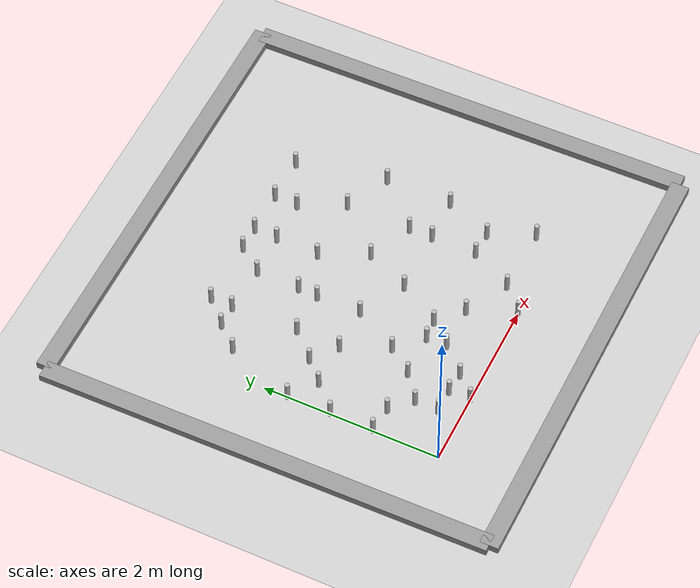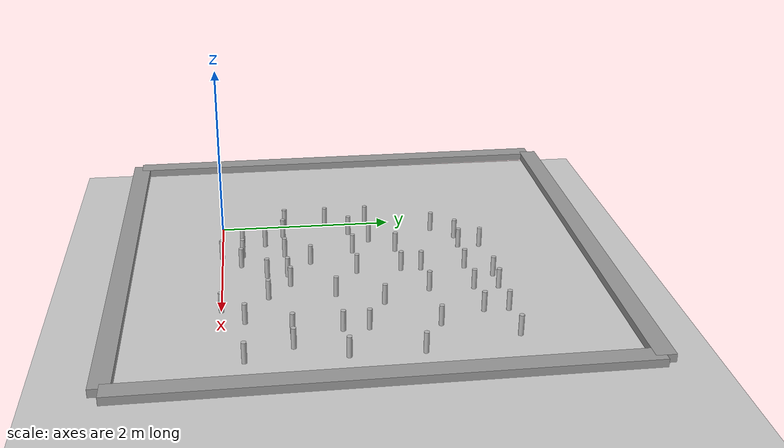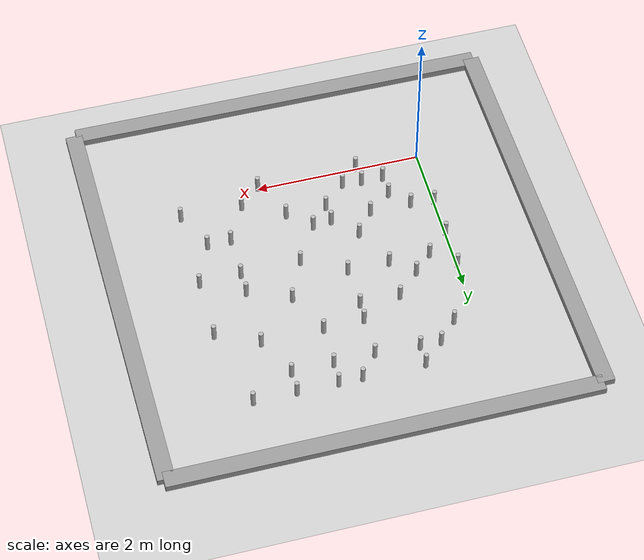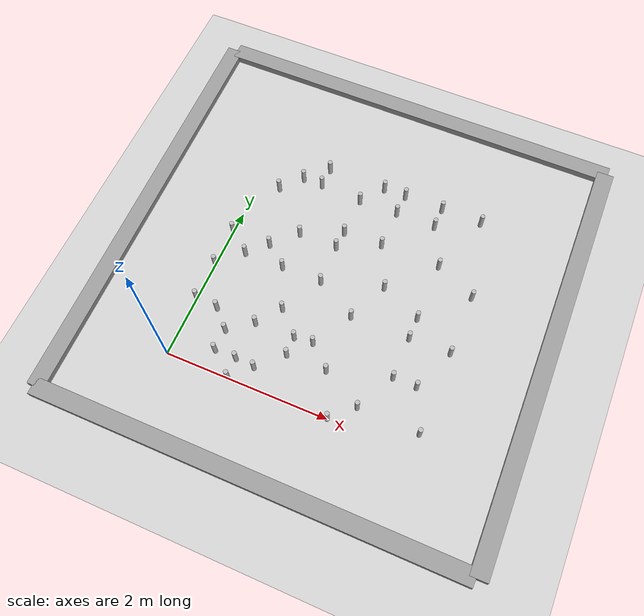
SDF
<sdf version="1.6">
 <world name="default">
  <light name="sun" type="directional">
   <pose>0 0 10 0 -0 0</pose>
   <diffuse>0.8 0.8 0.8 1</diffuse>
   <specular>0.1 0.1 0.1 1</specular>
   <attenuation>
    <range>1000</range>
    <constant>0.9</constant>
    <linear>0.01</linear>
    <quadratic>0.001</quadratic>
   </attenuation>
   <direction>-0.5 0.5 -1</direction>
  </light>
  <model name="ground_plane">
   <static>1</static>
   <link name="link">
    <collision name="collision">
     <geometry><plane><normal>0 0 1</normal><size>100 100</size></plane></geometry>
     <surface><friction><ode><mu>100</mu><mu2>50</mu2></ode></friction></surface>
    </collision>
    <visual name="visual">
     <cast_shadows>0</cast_shadows>
     <geometry><plane><normal>0 0 1</normal><size>100 100</size></plane></geometry>
     <material>
      <script><uri>file://media/materials/scripts/gazebo.material</uri><name>Gazebo/Grey</name></script>
     </material>
    </visual>
   </link>
  </model>
  <gravity>0 0 -9.8</gravity>
  <magnetic_field>6e-06 2.3e-05 -4.2e-05</magnetic_field>
  <atmosphere type="adiabatic"/>
  <physics name="default_physics" default="0" type="ode">
   <max_step_size>0.001</max_step_size>
   <real_time_factor>1</real_time_factor>
   <real_time_update_rate>1000</real_time_update_rate>
  </physics>
  <scene><ambient>0.4 0.4 0.4 1</ambient><background>0.7 0.7 0.7 1</background><shadows>1</shadows></scene>
  <spherical_coordinates>
   <surface_model>EARTH_WGS84</surface_model>
   <latitude_deg>0</latitude_deg>
   <longitude_deg>0</longitude_deg>
   <elevation>0</elevation>
   <heading_deg>0</heading_deg>
  </spherical_coordinates>
  <model name="wall1">
   <static>1</static>
   <link name="link">
    <pose>0 0 0.42 0 -0 0</pose>
    <collision name="collision"><geometry><box><size>5 0.2 0.084</size></box></geometry></collision>
    <visual name="visual">
     <cast_shadows>0</cast_shadows>
     <geometry><box><size>5 0.2 0.084</size></box></geometry>
     <material>
      <script>
       <uri>model://grey_wall/materials/scripts</uri>
       <uri>model://grey_wall/materials/textures</uri>
       <name>vrc/grey_wall</name>
      </script>
     </material>
    </visual>
   </link>
   <pose>-1 1.5 0 0 -0 -1.55905</pose>
  </model>
  <model name="wall2">
   <static>1</static>
   <link name="link">
    <pose>0 0 0.42 0 -0 0</pose>
    <collision name="collision"><geometry><box><size>5 0.2 0.084</size></box></geometry></collision>
    <visual name="visual">
     <cast_shadows>0</cast_shadows>
     <geometry><box><size>5 0.2 0.084</size></box></geometry>
     <material>
      <script>
       <uri>model://grey_wall/materials/scripts</uri>
       <uri>model://grey_wall/materials/textures</uri>
       <name>vrc/grey_wall</name>
      </script>
     </material>
    </visual>
   </link>
   <pose>1.5 4.0 0 0 -0 0</pose>
  </model>
  <model name="wall3">
   <static>1</static>
   <link name="link">
    <pose>0 0 0.42 0 -0 0</pose>
    <collision name="collision"><geometry><box><size>5 0.2 0.084</size></box></geometry></collision>
    <visual name="visual">
     <cast_shadows>0</cast_shadows>
     <geometry><box><size>5 0.2 0.084</size></box></geometry>
     <material>
      <script>
       <uri>model://grey_wall/materials/scripts</uri>
       <uri>model://grey_wall/materials/textures</uri>
       <name>vrc/grey_wall</name>
      </script>
     </material>
    </visual>
   </link>
   <pose>4.0 1.5 0 0 -0 -1.55905</pose>
  </model>
  <model name="wall4">
   <static>1</static>
   <link name="link">
    <pose>0 0 0.42 0 -0 0</pose>
    <collision name="collision"><geometry><box><size>5 0.2 0.084</size></box></geometry></collision>
    <visual name="visual">
     <cast_shadows>0</cast_shadows>
     <geometry><box><size>5 0.2 0.084</size></box></geometry>
     <material>
      <script>
       <uri>model://grey_wall/materials/scripts</uri>
       <uri>model://grey_wall/materials/textures</uri>
       <name>vrc/grey_wall</name>
      </script>
     </material>
    </visual>
   </link>
   <pose>1.5 -1 0 0 -0 0</pose>
  </model>
  <model name="can1.769429507232.73057049277">
   <link name="link">
    <pose>0 0 0.115 0 -0 0</pose>
    <inertial>
     <mass>0.39</mass>
     <inertia><ixx>0.00058</ixx><ixy>0</ixy><ixz>0</ixz><iyy>0.00058</iyy><iyz>0</iyz><izz>0.00019</izz></inertia>
    </inertial>
    <collision name="collision">
     <geometry><cylinder><radius>0.0275</radius><length>0.23</length></cylinder></geometry>
    </collision>
    <visual name="visual">
     <geometry><cylinder><radius>0.0275</radius><length>0.23</length></cylinder></geometry>
     <material>
      <script>
       <uri>model://beer/materials/scripts</uri>
       <uri>model://beer/materials/textures</uri>
       <name>Beer/Diffuse</name>
      </script>
     </material>
    </visual>
   </link>
   <pose>1.76942950723 2.73057049277 -2e-06 1e-06 0 -9.5e-05</pose>
  </model>
  <model name="can0.2756108923151.5">
   <link name="link">
    <pose>0 0 0.115 0 -0 0</pose>
    <inertial>
     <mass>0.39</mass>
     <inertia><ixx>0.00058</ixx><ixy>0</ixy><ixz>0</ixz><iyy>0.00058</iyy><iyz>0</iyz><izz>0.00019</izz></inertia>
    </inertial>
    <collision name="collision">
     <geometry><cylinder><radius>0.0275</radius><length>0.23</length></cylinder></geometry>
    </collision>
    <visual name="visual">
     <geometry><cylinder><radius>0.0275</radius><length>0.23</length></cylinder></geometry>
     <material>
      <script>
       <uri>model://beer/materials/scripts</uri>
       <uri>model://beer/materials/textures</uri>
       <name>Beer/Diffuse</name>
      </script>
     </material>
    </visual>
   </link>
   <pose>0.275610892315 1.5 -2e-06 1e-06 0 -9.5e-05</pose>
  </model>
  <model name="can0.51.71750291754">
   <link name="link">
    <pose>0 0 0.115 0 -0 0</pose>
    <inertial>
     <mass>0.39</mass>
     <inertia><ixx>0.00058</ixx><ixy>0</ixy><ixz>0</ixz><iyy>0.00058</iyy><iyz>0</iyz><izz>0.00019</izz></inertia>
    </inertial>
    <collision name="collision">
     <geometry><cylinder><radius>0.0275</radius><length>0.23</length></cylinder></geometry>
    </collision>
    <visual name="visual">
     <geometry><cylinder><radius>0.0275</radius><length>0.23</length></cylinder></geometry>
     <material>
      <script>
       <uri>model://beer/materials/scripts</uri>
       <uri>model://beer/materials/textures</uri>
       <name>Beer/Diffuse</name>
      </script>
     </material>
    </visual>
   </link>
   <pose>0.5 1.71750291754 -2e-06 1e-06 0 -9.5e-05</pose>
  </model>
  <model name="can2.01.72105293182">
   <link name="link">
    <pose>0 0 0.115 0 -0 0</pose>
    <inertial>
     <mass>0.39</mass>
     <inertia><ixx>0.00058</ixx><ixy>0</ixy><ixz>0</ixz><iyy>0.00058</iyy><iyz>0</iyz><izz>0.00019</izz></inertia>
    </inertial>
    <collision name="collision">
     <geometry><cylinder><radius>0.0275</radius><length>0.23</length></cylinder></geometry>
    </collision>
    <visual name="visual">
     <geometry><cylinder><radius>0.0275</radius><length>0.23</length></cylinder></geometry>
     <material>
      <script>
       <uri>model://beer/materials/scripts</uri>
       <uri>model://beer/materials/textures</uri>
       <name>Beer/Diffuse</name>
      </script>
     </material>
    </visual>
   </link>
   <pose>2.0 1.72105293182 -2e-06 1e-06 0 -9.5e-05</pose>
  </model>
  <model name="can1.273196338311.5">
   <link name="link">
    <pose>0 0 0.115 0 -0 0</pose>
    <inertial>
     <mass>0.39</mass>
     <inertia><ixx>0.00058</ixx><ixy>0</ixy><ixz>0</ixz><iyy>0.00058</iyy><iyz>0</iyz><izz>0.00019</izz></inertia>
    </inertial>
    <collision name="collision">
     <geometry><cylinder><radius>0.0275</radius><length>0.23</length></cylinder></geometry>
    </collision>
    <visual name="visual">
     <geometry><cylinder><radius>0.0275</radius><length>0.23</length></cylinder></geometry>
     <material>
      <script>
       <uri>model://beer/materials/scripts</uri>
       <uri>model://beer/materials/textures</uri>
       <name>Beer/Diffuse</name>
      </script>
     </material>
    </visual>
   </link>
   <pose>1.27319633831 1.5 -2e-06 1e-06 0 -9.5e-05</pose>
  </model>
  <model name="can1.274834134952.22516586505">
   <link name="link">
    <pose>0 0 0.115 0 -0 0</pose>
    <inertial>
     <mass>0.39</mass>
     <inertia><ixx>0.00058</ixx><ixy>0</ixy><ixz>0</ixz><iyy>0.00058</iyy><iyz>0</iyz><izz>0.00019</izz></inertia>
    </inertial>
    <collision name="collision">
     <geometry><cylinder><radius>0.0275</radius><length>0.23</length></cylinder></geometry>
    </collision>
    <visual name="visual">
     <geometry><cylinder><radius>0.0275</radius><length>0.23</length></cylinder></geometry>
     <material>
      <script>
       <uri>model://beer/materials/scripts</uri>
       <uri>model://beer/materials/textures</uri>
       <name>Beer/Diffuse</name>
      </script>
     </material>
    </visual>
   </link>
   <pose>1.27483413495 2.22516586505 -2e-06 1e-06 0 -9.5e-05</pose>
  </model>
  <model name="can0.52.74825235342">
   <link name="link">
    <pose>0 0 0.115 0 -0 0</pose>
    <inertial>
     <mass>0.39</mass>
     <inertia><ixx>0.00058</ixx><ixy>0</ixy><ixz>0</ixz><iyy>0.00058</iyy><iyz>0</iyz><izz>0.00019</izz></inertia>
    </inertial>
    <collision name="collision">
     <geometry><cylinder><radius>0.0275</radius><length>0.23</length></cylinder></geometry>
    </collision>
    <visual name="visual">
     <geometry><cylinder><radius>0.0275</radius><length>0.23</length></cylinder></geometry>
     <material>
      <script>
       <uri>model://beer/materials/scripts</uri>
       <uri>model://beer/materials/textures</uri>
       <name>Beer/Diffuse</name>
      </script>
     </material>
    </visual>
   </link>
   <pose>0.5 2.74825235342 -2e-06 1e-06 0 -9.5e-05</pose>
  </model>
  <model name="can1.781881791543.0">
   <link name="link">
    <pose>0 0 0.115 0 -0 0</pose>
    <inertial>
     <mass>0.39</mass>
     <inertia><ixx>0.00058</ixx><ixy>0</ixy><ixz>0</ixz><iyy>0.00058</iyy><iyz>0</iyz><izz>0.00019</izz></inertia>
    </inertial>
    <collision name="collision">
     <geometry><cylinder><radius>0.0275</radius><length>0.23</length></cylinder></geometry>
    </collision>
    <visual name="visual">
     <geometry><cylinder><radius>0.0275</radius><length>0.23</length></cylinder></geometry>
     <material>
      <script>
       <uri>model://beer/materials/scripts</uri>
       <uri>model://beer/materials/textures</uri>
       <name>Beer/Diffuse</name>
      </script>
     </material>
    </visual>
   </link>
   <pose>1.78188179154 3.0 -2e-06 1e-06 0 -9.5e-05</pose>
  </model>
  <model name="can2.265829215212.73417078479">
   <link name="link">
    <pose>0 0 0.115 0 -0 0</pose>
    <inertial>
     <mass>0.39</mass>
     <inertia><ixx>0.00058</ixx><ixy>0</ixy><ixz>0</ixz><iyy>0.00058</iyy><iyz>0</iyz><izz>0.00019</izz></inertia>
    </inertial>
    <collision name="collision">
     <geometry><cylinder><radius>0.0275</radius><length>0.23</length></cylinder></geometry>
    </collision>
    <visual name="visual">
     <geometry><cylinder><radius>0.0275</radius><length>0.23</length></cylinder></geometry>
     <material>
      <script>
       <uri>model://beer/materials/scripts</uri>
       <uri>model://beer/materials/textures</uri>
       <name>Beer/Diffuse</name>
      </script>
     </material>
    </visual>
   </link>
   <pose>2.26582921521 2.73417078479 -2e-06 1e-06 0 -9.5e-05</pose>
  </model>
  <model name="can0.7556218427023.0">
   <link name="link">
    <pose>0 0 0.115 0 -0 0</pose>
    <inertial>
     <mass>0.39</mass>
     <inertia><ixx>0.00058</ixx><ixy>0</ixy><ixz>0</ixz><iyy>0.00058</iyy><iyz>0</iyz><izz>0.00019</izz></inertia>
    </inertial>
    <collision name="collision">
     <geometry><cylinder><radius>0.0275</radius><length>0.23</length></cylinder></geometry>
    </collision>
    <visual name="visual">
     <geometry><cylinder><radius>0.0275</radius><length>0.23</length></cylinder></geometry>
     <material>
      <script>
       <uri>model://beer/materials/scripts</uri>
       <uri>model://beer/materials/textures</uri>
       <name>Beer/Diffuse</name>
      </script>
     </material>
    </visual>
   </link>
   <pose>0.755621842702 3.0 -2e-06 1e-06 0 -9.5e-05</pose>
  </model>
  <model name="can2.51.23127896449">
   <link name="link">
    <pose>0 0 0.115 0 -0 0</pose>
    <inertial>
     <mass>0.39</mass>
     <inertia><ixx>0.00058</ixx><ixy>0</ixy><ixz>0</ixz><iyy>0.00058</iyy><iyz>0</iyz><izz>0.00019</izz></inertia>
    </inertial>
    <collision name="collision">
     <geometry><cylinder><radius>0.0275</radius><length>0.23</length></cylinder></geometry>
    </collision>
    <visual name="visual">
     <geometry><cylinder><radius>0.0275</radius><length>0.23</length></cylinder></geometry>
     <material>
      <script>
       <uri>model://beer/materials/scripts</uri>
       <uri>model://beer/materials/textures</uri>
       <name>Beer/Diffuse</name>
      </script>
     </material>
    </visual>
   </link>
   <pose>2.5 1.23127896449 -2e-06 1e-06 0 -9.5e-05</pose>
  </model>
  <model name="can0.01.72632299853">
   <link name="link">
    <pose>0 0 0.115 0 -0 0</pose>
    <inertial>
     <mass>0.39</mass>
     <inertia><ixx>0.00058</ixx><ixy>0</ixy><ixz>0</ixz><iyy>0.00058</iyy><iyz>0</iyz><izz>0.00019</izz></inertia>
    </inertial>
    <collision name="collision">
     <geometry><cylinder><radius>0.0275</radius><length>0.23</length></cylinder></geometry>
    </collision>
    <visual name="visual">
     <geometry><cylinder><radius>0.0275</radius><length>0.23</length></cylinder></geometry>
     <material>
      <script>
       <uri>model://beer/materials/scripts</uri>
       <uri>model://beer/materials/textures</uri>
       <name>Beer/Diffuse</name>
      </script>
     </material>
    </visual>
   </link>
   <pose>0.0 1.72632299853 -2e-06 1e-06 0 -9.5e-05</pose>
  </model>
  <model name="can1.777383396231.22261660377">
   <link name="link">
    <pose>0 0 0.115 0 -0 0</pose>
    <inertial>
     <mass>0.39</mass>
     <inertia><ixx>0.00058</ixx><ixy>0</ixy><ixz>0</ixz><iyy>0.00058</iyy><iyz>0</iyz><izz>0.00019</izz></inertia>
    </inertial>
    <collision name="collision">
     <geometry><cylinder><radius>0.0275</radius><length>0.23</length></cylinder></geometry>
    </collision>
    <visual name="visual">
     <geometry><cylinder><radius>0.0275</radius><length>0.23</length></cylinder></geometry>
     <material>
      <script>
       <uri>model://beer/materials/scripts</uri>
       <uri>model://beer/materials/textures</uri>
       <name>Beer/Diffuse</name>
      </script>
     </material>
    </visual>
   </link>
   <pose>1.77738339623 1.22261660377 -2e-06 1e-06 0 -9.5e-05</pose>
  </model>
  <model name="can0.7785080617092.0">
   <link name="link">
    <pose>0 0 0.115 0 -0 0</pose>
    <inertial>
     <mass>0.39</mass>
     <inertia><ixx>0.00058</ixx><ixy>0</ixy><ixz>0</ixz><iyy>0.00058</iyy><iyz>0</iyz><izz>0.00019</izz></inertia>
    </inertial>
    <collision name="collision">
     <geometry><cylinder><radius>0.0275</radius><length>0.23</length></cylinder></geometry>
    </collision>
    <visual name="visual">
     <geometry><cylinder><radius>0.0275</radius><length>0.23</length></cylinder></geometry>
     <material>
      <script>
       <uri>model://beer/materials/scripts</uri>
       <uri>model://beer/materials/textures</uri>
       <name>Beer/Diffuse</name>
      </script>
     </material>
    </visual>
   </link>
   <pose>0.778508061709 2.0 -2e-06 1e-06 0 -9.5e-05</pose>
  </model>
  <model name="can1.272984553580.727015446415">
   <link name="link">
    <pose>0 0 0.115 0 -0 0</pose>
    <inertial>
     <mass>0.39</mass>
     <inertia><ixx>0.00058</ixx><ixy>0</ixy><ixz>0</ixz><iyy>0.00058</iyy><iyz>0</iyz><izz>0.00019</izz></inertia>
    </inertial>
    <collision name="collision">
     <geometry><cylinder><radius>0.0275</radius><length>0.23</length></cylinder></geometry>
    </collision>
    <visual name="visual">
     <geometry><cylinder><radius>0.0275</radius><length>0.23</length></cylinder></geometry>
     <material>
      <script>
       <uri>model://beer/materials/scripts</uri>
       <uri>model://beer/materials/textures</uri>
       <name>Beer/Diffuse</name>
      </script>
     </material>
    </visual>
   </link>
   <pose>1.27298455358 0.727015446415 -2e-06 1e-06 0 -9.5e-05</pose>
  </model>
  <model name="can2.50.718366912159">
   <link name="link">
    <pose>0 0 0.115 0 -0 0</pose>
    <inertial>
     <mass>0.39</mass>
     <inertia><ixx>0.00058</ixx><ixy>0</ixy><ixz>0</ixz><iyy>0.00058</iyy><iyz>0</iyz><izz>0.00019</izz></inertia>
    </inertial>
    <collision name="collision">
     <geometry><cylinder><radius>0.0275</radius><length>0.23</length></cylinder></geometry>
    </collision>
    <visual name="visual">
     <geometry><cylinder><radius>0.0275</radius><length>0.23</length></cylinder></geometry>
     <material>
      <script>
       <uri>model://beer/materials/scripts</uri>
       <uri>model://beer/materials/textures</uri>
       <name>Beer/Diffuse</name>
      </script>
     </material>
    </visual>
   </link>
   <pose>2.5 0.718366912159 -2e-06 1e-06 0 -9.5e-05</pose>
  </model>
  <model name="can1.771145324470.5">
   <link name="link">
    <pose>0 0 0.115 0 -0 0</pose>
    <inertial>
     <mass>0.39</mass>
     <inertia><ixx>0.00058</ixx><ixy>0</ixy><ixz>0</ixz><iyy>0.00058</iyy><iyz>0</iyz><izz>0.00019</izz></inertia>
    </inertial>
    <collision name="collision">
     <geometry><cylinder><radius>0.0275</radius><length>0.23</length></cylinder></geometry>
    </collision>
    <visual name="visual">
     <geometry><cylinder><radius>0.0275</radius><length>0.23</length></cylinder></geometry>
     <material>
      <script>
       <uri>model://beer/materials/scripts</uri>
       <uri>model://beer/materials/textures</uri>
       <name>Beer/Diffuse</name>
      </script>
     </material>
    </visual>
   </link>
   <pose>1.77114532447 0.5 -2e-06 1e-06 0 -9.5e-05</pose>
  </model>
  <model name="can0.7752302076860.0">
   <link name="link">
    <pose>0 0 0.115 0 -0 0</pose>
    <inertial>
     <mass>0.39</mass>
     <inertia><ixx>0.00058</ixx><ixy>0</ixy><ixz>0</ixz><iyy>0.00058</iyy><iyz>0</iyz><izz>0.00019</izz></inertia>
    </inertial>
    <collision name="collision">
     <geometry><cylinder><radius>0.0275</radius><length>0.23</length></cylinder></geometry>
    </collision>
    <visual name="visual">
     <geometry><cylinder><radius>0.0275</radius><length>0.23</length></cylinder></geometry>
     <material>
      <script>
       <uri>model://beer/materials/scripts</uri>
       <uri>model://beer/materials/textures</uri>
       <name>Beer/Diffuse</name>
      </script>
     </material>
    </visual>
   </link>
   <pose>0.775230207686 0.0 -2e-06 1e-06 0 -9.5e-05</pose>
  </model>
  <model name="can0.00.746624953268">
   <link name="link">
    <pose>0 0 0.115 0 -0 0</pose>
    <inertial>
     <mass>0.39</mass>
     <inertia><ixx>0.00058</ixx><ixy>0</ixy><ixz>0</ixz><iyy>0.00058</iyy><iyz>0</iyz><izz>0.00019</izz></inertia>
    </inertial>
    <collision name="collision">
     <geometry><cylinder><radius>0.0275</radius><length>0.23</length></cylinder></geometry>
    </collision>
    <visual name="visual">
     <geometry><cylinder><radius>0.0275</radius><length>0.23</length></cylinder></geometry>
     <material>
      <script>
       <uri>model://beer/materials/scripts</uri>
       <uri>model://beer/materials/textures</uri>
       <name>Beer/Diffuse</name>
      </script>
     </material>
    </visual>
   </link>
   <pose>0.0 0.746624953268 -2e-06 1e-06 0 -9.5e-05</pose>
  </model>
  <model name="can1.00.218293859125">
   <link name="link">
    <pose>0 0 0.115 0 -0 0</pose>
    <inertial>
     <mass>0.39</mass>
     <inertia><ixx>0.00058</ixx><ixy>0</ixy><ixz>0</ixz><iyy>0.00058</iyy><iyz>0</iyz><izz>0.00019</izz></inertia>
    </inertial>
    <collision name="collision">
     <geometry><cylinder><radius>0.0275</radius><length>0.23</length></cylinder></geometry>
    </collision>
    <visual name="visual">
     <geometry><cylinder><radius>0.0275</radius><length>0.23</length></cylinder></geometry>
     <material>
      <script>
       <uri>model://beer/materials/scripts</uri>
       <uri>model://beer/materials/textures</uri>
       <name>Beer/Diffuse</name>
      </script>
     </material>
    </visual>
   </link>
   <pose>1.0 0.218293859125 -2e-06 1e-06 0 -9.5e-05</pose>
  </model>
  <model name="can2.257008541740.242991458258">
   <link name="link">
    <pose>0 0 0.115 0 -0 0</pose>
    <inertial>
     <mass>0.39</mass>
     <inertia><ixx>0.00058</ixx><ixy>0</ixy><ixz>0</ixz><iyy>0.00058</iyy><iyz>0</iyz><izz>0.00019</izz></inertia>
    </inertial>
    <collision name="collision">
     <geometry><cylinder><radius>0.0275</radius><length>0.23</length></cylinder></geometry>
    </collision>
    <visual name="visual">
     <geometry><cylinder><radius>0.0275</radius><length>0.23</length></cylinder></geometry>
     <material>
      <script>
       <uri>model://beer/materials/scripts</uri>
       <uri>model://beer/materials/textures</uri>
       <name>Beer/Diffuse</name>
      </script>
     </material>
    </visual>
   </link>
   <pose>2.25700854174 0.242991458258 -2e-06 1e-06 0 -9.5e-05</pose>
  </model>
  <model name="can1.760226116172.23977388383">
   <link name="link">
    <pose>0 0 0.115 0 -0 0</pose>
    <inertial>
     <mass>0.39</mass>
     <inertia><ixx>0.00058</ixx><ixy>0</ixy><ixz>0</ixz><iyy>0.00058</iyy><iyz>0</iyz><izz>0.00019</izz></inertia>
    </inertial>
    <collision name="collision">
     <geometry><cylinder><radius>0.0275</radius><length>0.23</length></cylinder></geometry>
    </collision>
    <visual name="visual">
     <geometry><cylinder><radius>0.0275</radius><length>0.23</length></cylinder></geometry>
     <material>
      <script>
       <uri>model://beer/materials/scripts</uri>
       <uri>model://beer/materials/textures</uri>
       <name>Beer/Diffuse</name>
      </script>
     </material>
    </visual>
   </link>
   <pose>1.76022611617 2.23977388383 -2e-06 1e-06 0 -9.5e-05</pose>
  </model>
  <model name="can3.01.24506078331">
   <link name="link">
    <pose>0 0 0.115 0 -0 0</pose>
    <inertial>
     <mass>0.39</mass>
     <inertia><ixx>0.00058</ixx><ixy>0</ixy><ixz>0</ixz><iyy>0.00058</iyy><iyz>0</iyz><izz>0.00019</izz></inertia>
    </inertial>
    <collision name="collision">
     <geometry><cylinder><radius>0.0275</radius><length>0.23</length></cylinder></geometry>
    </collision>
    <visual name="visual">
     <geometry><cylinder><radius>0.0275</radius><length>0.23</length></cylinder></geometry>
     <material>
      <script>
       <uri>model://beer/materials/scripts</uri>
       <uri>model://beer/materials/textures</uri>
       <name>Beer/Diffuse</name>
      </script>
     </material>
    </visual>
   </link>
   <pose>3.0 1.24506078331 -2e-06 1e-06 0 -9.5e-05</pose>
  </model>
  <model name="can0.2725209513052.5">
   <link name="link">
    <pose>0 0 0.115 0 -0 0</pose>
    <inertial>
     <mass>0.39</mass>
     <inertia><ixx>0.00058</ixx><ixy>0</ixy><ixz>0</ixz><iyy>0.00058</iyy><iyz>0</iyz><izz>0.00019</izz></inertia>
    </inertial>
    <collision name="collision">
     <geometry><cylinder><radius>0.0275</radius><length>0.23</length></cylinder></geometry>
    </collision>
    <visual name="visual">
     <geometry><cylinder><radius>0.0275</radius><length>0.23</length></cylinder></geometry>
     <material>
      <script>
       <uri>model://beer/materials/scripts</uri>
       <uri>model://beer/materials/textures</uri>
       <name>Beer/Diffuse</name>
      </script>
     </material>
    </visual>
   </link>
   <pose>0.272520951305 2.5 -2e-06 1e-06 0 -9.5e-05</pose>
  </model>
  <model name="can3.00.228099375766">
   <link name="link">
    <pose>0 0 0.115 0 -0 0</pose>
    <inertial>
     <mass>0.39</mass>
     <inertia><ixx>0.00058</ixx><ixy>0</ixy><ixz>0</ixz><iyy>0.00058</iyy><iyz>0</iyz><izz>0.00019</izz></inertia>
    </inertial>
    <collision name="collision">
     <geometry><cylinder><radius>0.0275</radius><length>0.23</length></cylinder></geometry>
    </collision>
    <visual name="visual">
     <geometry><cylinder><radius>0.0275</radius><length>0.23</length></cylinder></geometry>
     <material>
      <script>
       <uri>model://beer/materials/scripts</uri>
       <uri>model://beer/materials/textures</uri>
       <name>Beer/Diffuse</name>
      </script>
     </material>
    </visual>
   </link>
   <pose>3.0 0.228099375766 -2e-06 1e-06 0 -9.5e-05</pose>
  </model>
  <model name="can0.7705411234611.5">
   <link name="link">
    <pose>0 0 0.115 0 -0 0</pose>
    <inertial>
     <mass>0.39</mass>
     <inertia><ixx>0.00058</ixx><ixy>0</ixy><ixz>0</ixz><iyy>0.00058</iyy><iyz>0</iyz><izz>0.00019</izz></inertia>
    </inertial>
    <collision name="collision">
     <geometry><cylinder><radius>0.0275</radius><length>0.23</length></cylinder></geometry>
    </collision>
    <visual name="visual">
     <geometry><cylinder><radius>0.0275</radius><length>0.23</length></cylinder></geometry>
     <material>
      <script>
       <uri>model://beer/materials/scripts</uri>
       <uri>model://beer/materials/textures</uri>
       <name>Beer/Diffuse</name>
      </script>
     </material>
    </visual>
   </link>
   <pose>0.770541123461 1.5 -2e-06 1e-06 0 -9.5e-05</pose>
  </model>
  <model name="can2.52.240097773">
   <link name="link">
    <pose>0 0 0.115 0 -0 0</pose>
    <inertial>
     <mass>0.39</mass>
     <inertia><ixx>0.00058</ixx><ixy>0</ixy><ixz>0</ixz><iyy>0.00058</iyy><iyz>0</iyz><izz>0.00019</izz></inertia>
    </inertial>
    <collision name="collision">
     <geometry><cylinder><radius>0.0275</radius><length>0.23</length></cylinder></geometry>
    </collision>
    <visual name="visual">
     <geometry><cylinder><radius>0.0275</radius><length>0.23</length></cylinder></geometry>
     <material>
      <script>
       <uri>model://beer/materials/scripts</uri>
       <uri>model://beer/materials/textures</uri>
       <name>Beer/Diffuse</name>
      </script>
     </material>
    </visual>
   </link>
   <pose>2.5 2.240097773 -2e-06 1e-06 0 -9.5e-05</pose>
  </model>
  <model name="can1.260999145992.0">
   <link name="link">
    <pose>0 0 0.115 0 -0 0</pose>
    <inertial>
     <mass>0.39</mass>
     <inertia><ixx>0.00058</ixx><ixy>0</ixy><ixz>0</ixz><iyy>0.00058</iyy><iyz>0</iyz><izz>0.00019</izz></inertia>
    </inertial>
    <collision name="collision">
     <geometry><cylinder><radius>0.0275</radius><length>0.23</length></cylinder></geometry>
    </collision>
    <visual name="visual">
     <geometry><cylinder><radius>0.0275</radius><length>0.23</length></cylinder></geometry>
     <material>
      <script>
       <uri>model://beer/materials/scripts</uri>
       <uri>model://beer/materials/textures</uri>
       <name>Beer/Diffuse</name>
      </script>
     </material>
    </visual>
   </link>
   <pose>1.26099914599 2.0 -2e-06 1e-06 0 -9.5e-05</pose>
  </model>
  <model name="can0.2835146841470.716485315853">
   <link name="link">
    <pose>0 0 0.115 0 -0 0</pose>
    <inertial>
     <mass>0.39</mass>
     <inertia><ixx>0.00058</ixx><ixy>0</ixy><ixz>0</ixz><iyy>0.00058</iyy><iyz>0</iyz><izz>0.00019</izz></inertia>
    </inertial>
    <collision name="collision">
     <geometry><cylinder><radius>0.0275</radius><length>0.23</length></cylinder></geometry>
    </collision>
    <visual name="visual">
     <geometry><cylinder><radius>0.0275</radius><length>0.23</length></cylinder></geometry>
     <material>
      <script>
       <uri>model://beer/materials/scripts</uri>
       <uri>model://beer/materials/textures</uri>
       <name>Beer/Diffuse</name>
      </script>
     </material>
    </visual>
   </link>
   <pose>0.283514684147 0.716485315853 -2e-06 1e-06 0 -9.5e-05</pose>
  </model>
  <model name="can0.50.23576635643">
   <link name="link">
    <pose>0 0 0.115 0 -0 0</pose>
    <inertial>
     <mass>0.39</mass>
     <inertia><ixx>0.00058</ixx><ixy>0</ixy><ixz>0</ixz><iyy>0.00058</iyy><iyz>0</iyz><izz>0.00019</izz></inertia>
    </inertial>
    <collision name="collision">
     <geometry><cylinder><radius>0.0275</radius><length>0.23</length></cylinder></geometry>
    </collision>
    <visual name="visual">
     <geometry><cylinder><radius>0.0275</radius><length>0.23</length></cylinder></geometry>
     <material>
      <script>
       <uri>model://beer/materials/scripts</uri>
       <uri>model://beer/materials/textures</uri>
       <name>Beer/Diffuse</name>
      </script>
     </material>
    </visual>
   </link>
   <pose>0.5 0.23576635643 -2e-06 1e-06 0 -9.5e-05</pose>
  </model>
  <model name="can2.269836038643.0">
   <link name="link">
    <pose>0 0 0.115 0 -0 0</pose>
    <inertial>
     <mass>0.39</mass>
     <inertia><ixx>0.00058</ixx><ixy>0</ixy><ixz>0</ixz><iyy>0.00058</iyy><iyz>0</iyz><izz>0.00019</izz></inertia>
    </inertial>
    <collision name="collision">
     <geometry><cylinder><radius>0.0275</radius><length>0.23</length></cylinder></geometry>
    </collision>
    <visual name="visual">
     <geometry><cylinder><radius>0.0275</radius><length>0.23</length></cylinder></geometry>
     <material>
      <script>
       <uri>model://beer/materials/scripts</uri>
       <uri>model://beer/materials/textures</uri>
       <name>Beer/Diffuse</name>
      </script>
     </material>
    </visual>
   </link>
   <pose>2.26983603864 3.0 -2e-06 1e-06 0 -9.5e-05</pose>
  </model>
  <model name="can0.7842421011250.715757898875">
   <link name="link">
    <pose>0 0 0.115 0 -0 0</pose>
    <inertial>
     <mass>0.39</mass>
     <inertia><ixx>0.00058</ixx><ixy>0</ixy><ixz>0</ixz><iyy>0.00058</iyy><iyz>0</iyz><izz>0.00019</izz></inertia>
    </inertial>
    <collision name="collision">
     <geometry><cylinder><radius>0.0275</radius><length>0.23</length></cylinder></geometry>
    </collision>
    <visual name="visual">
     <geometry><cylinder><radius>0.0275</radius><length>0.23</length></cylinder></geometry>
     <material>
      <script>
       <uri>model://beer/materials/scripts</uri>
       <uri>model://beer/materials/textures</uri>
       <name>Beer/Diffuse</name>
      </script>
     </material>
    </visual>
   </link>
   <pose>0.784242101125 0.715757898875 -2e-06 1e-06 0 -9.5e-05</pose>
  </model>
  <model name="can0.7502448987342.74975510127">
   <link name="link">
    <pose>0 0 0.115 0 -0 0</pose>
    <inertial>
     <mass>0.39</mass>
     <inertia><ixx>0.00058</ixx><ixy>0</ixy><ixz>0</ixz><iyy>0.00058</iyy><iyz>0</iyz><izz>0.00019</izz></inertia>
    </inertial>
    <collision name="collision">
     <geometry><cylinder><radius>0.0275</radius><length>0.23</length></cylinder></geometry>
    </collision>
    <visual name="visual">
     <geometry><cylinder><radius>0.0275</radius><length>0.23</length></cylinder></geometry>
     <material>
      <script>
       <uri>model://beer/materials/scripts</uri>
       <uri>model://beer/materials/textures</uri>
       <name>Beer/Diffuse</name>
      </script>
     </material>
    </visual>
   </link>
   <pose>0.750244898734 2.74975510127 -2e-06 1e-06 0 -9.5e-05</pose>
  </model>
  <model name="can1.50.748420771399">
   <link name="link">
    <pose>0 0 0.115 0 -0 0</pose>
    <inertial>
     <mass>0.39</mass>
     <inertia><ixx>0.00058</ixx><ixy>0</ixy><ixz>0</ixz><iyy>0.00058</iyy><iyz>0</iyz><izz>0.00019</izz></inertia>
    </inertial>
    <collision name="collision">
     <geometry><cylinder><radius>0.0275</radius><length>0.23</length></cylinder></geometry>
    </collision>
    <visual name="visual">
     <geometry><cylinder><radius>0.0275</radius><length>0.23</length></cylinder></geometry>
     <material>
      <script>
       <uri>model://beer/materials/scripts</uri>
       <uri>model://beer/materials/textures</uri>
       <name>Beer/Diffuse</name>
      </script>
     </material>
    </visual>
   </link>
   <pose>1.5 0.748420771399 -2e-06 1e-06 0 -9.5e-05</pose>
  </model>
  <model name="can2.784822831890.715177168105">
   <link name="link">
    <pose>0 0 0.115 0 -0 0</pose>
    <inertial>
     <mass>0.39</mass>
     <inertia><ixx>0.00058</ixx><ixy>0</ixy><ixz>0</ixz><iyy>0.00058</iyy><iyz>0</iyz><izz>0.00019</izz></inertia>
    </inertial>
    <collision name="collision">
     <geometry><cylinder><radius>0.0275</radius><length>0.23</length></cylinder></geometry>
    </collision>
    <visual name="visual">
     <geometry><cylinder><radius>0.0275</radius><length>0.23</length></cylinder></geometry>
     <material>
      <script>
       <uri>model://beer/materials/scripts</uri>
       <uri>model://beer/materials/textures</uri>
       <name>Beer/Diffuse</name>
      </script>
     </material>
    </visual>
   </link>
   <pose>2.78482283189 0.715177168105 -2e-06 1e-06 0 -9.5e-05</pose>
  </model>
  <model name="can0.01.23467947069">
   <link name="link">
    <pose>0 0 0.115 0 -0 0</pose>
    <inertial>
     <mass>0.39</mass>
     <inertia><ixx>0.00058</ixx><ixy>0</ixy><ixz>0</ixz><iyy>0.00058</iyy><iyz>0</iyz><izz>0.00019</izz></inertia>
    </inertial>
    <collision name="collision">
     <geometry><cylinder><radius>0.0275</radius><length>0.23</length></cylinder></geometry>
    </collision>
    <visual name="visual">
     <geometry><cylinder><radius>0.0275</radius><length>0.23</length></cylinder></geometry>
     <material>
      <script>
       <uri>model://beer/materials/scripts</uri>
       <uri>model://beer/materials/textures</uri>
       <name>Beer/Diffuse</name>
      </script>
     </material>
    </visual>
   </link>
   <pose>0.0 1.23467947069 -2e-06 1e-06 0 -9.5e-05</pose>
  </model>
  <model name="can0.7647668360410.235233163959">
   <link name="link">
    <pose>0 0 0.115 0 -0 0</pose>
    <inertial>
     <mass>0.39</mass>
     <inertia><ixx>0.00058</ixx><ixy>0</ixy><ixz>0</ixz><iyy>0.00058</iyy><iyz>0</iyz><izz>0.00019</izz></inertia>
    </inertial>
    <collision name="collision">
     <geometry><cylinder><radius>0.0275</radius><length>0.23</length></cylinder></geometry>
    </collision>
    <visual name="visual">
     <geometry><cylinder><radius>0.0275</radius><length>0.23</length></cylinder></geometry>
     <material>
      <script>
       <uri>model://beer/materials/scripts</uri>
       <uri>model://beer/materials/textures</uri>
       <name>Beer/Diffuse</name>
      </script>
     </material>
    </visual>
   </link>
   <pose>0.764766836041 0.235233163959 -2e-06 1e-06 0 -9.5e-05</pose>
  </model>
  <model name="can2.777695963873.0">
   <link name="link">
    <pose>0 0 0.115 0 -0 0</pose>
    <inertial>
     <mass>0.39</mass>
     <inertia><ixx>0.00058</ixx><ixy>0</ixy><ixz>0</ixz><iyy>0.00058</iyy><iyz>0</iyz><izz>0.00019</izz></inertia>
    </inertial>
    <collision name="collision">
     <geometry><cylinder><radius>0.0275</radius><length>0.23</length></cylinder></geometry>
    </collision>
    <visual name="visual">
     <geometry><cylinder><radius>0.0275</radius><length>0.23</length></cylinder></geometry>
     <material>
      <script>
       <uri>model://beer/materials/scripts</uri>
       <uri>model://beer/materials/textures</uri>
       <name>Beer/Diffuse</name>
      </script>
     </material>
    </visual>
   </link>
   <pose>2.77769596387 3.0 -2e-06 1e-06 0 -9.5e-05</pose>
  </model>
  <model name="can1.281268587032.71873141297">
   <link name="link">
    <pose>0 0 0.115 0 -0 0</pose>
    <inertial>
     <mass>0.39</mass>
     <inertia><ixx>0.00058</ixx><ixy>0</ixy><ixz>0</ixz><iyy>0.00058</iyy><iyz>0</iyz><izz>0.00019</izz></inertia>
    </inertial>
    <collision name="collision">
     <geometry><cylinder><radius>0.0275</radius><length>0.23</length></cylinder></geometry>
    </collision>
    <visual name="visual">
     <geometry><cylinder><radius>0.0275</radius><length>0.23</length></cylinder></geometry>
     <material>
      <script>
       <uri>model://beer/materials/scripts</uri>
       <uri>model://beer/materials/textures</uri>
       <name>Beer/Diffuse</name>
      </script>
     </material>
    </visual>
   </link>
   <pose>1.28126858703 2.71873141297 -2e-06 1e-06 0 -9.5e-05</pose>
  </model>
  <model name="can1.280684300680.5">
   <link name="link">
    <pose>0 0 0.115 0 -0 0</pose>
    <inertial>
     <mass>0.39</mass>
     <inertia><ixx>0.00058</ixx><ixy>0</ixy><ixz>0</ixz><iyy>0.00058</iyy><iyz>0</iyz><izz>0.00019</izz></inertia>
    </inertial>
    <collision name="collision">
     <geometry><cylinder><radius>0.0275</radius><length>0.23</length></cylinder></geometry>
    </collision>
    <visual name="visual">
     <geometry><cylinder><radius>0.0275</radius><length>0.23</length></cylinder></geometry>
     <material>
      <script>
       <uri>model://beer/materials/scripts</uri>
       <uri>model://beer/materials/textures</uri>
       <name>Beer/Diffuse</name>
      </script>
     </material>
    </visual>
   </link>
   <pose>1.28068430068 0.5 -2e-06 1e-06 0 -9.5e-05</pose>
  </model>
  <model name="can2.00.0">
   <static>1</static>
   <link name="link">
    <pose>0 0 0.115 0 -0 0</pose>
    <inertial>
     <mass>0.39</mass>
     <inertia><ixx>0.00058</ixx><ixy>0</ixy><ixz>0</ixz><iyy>0.00058</iyy><iyz>0</iyz><izz>0.00019</izz></inertia>
    </inertial>
    <visual name="visual">
     <geometry><cylinder><radius>0.0275</radius><length>0.23</length></cylinder></geometry>
     <material>
      <script>
       <uri>model://fuelstation/materials/scripts</uri>
       <uri>model://fuelstation/materials/textures</uri>
       <name>fuelstation/Diffuse</name>
      </script>
     </material>
    </visual>
   </link>
   <pose>2.0 0.0 -2e-06 1e-06 0 -9.5e-05</pose>
  </model>
  <model name="can1.01.0">
   <static>1</static>
   <link name="link">
    <pose>0 0 0.115 0 -0 0</pose>
    <inertial>
     <mass>0.39</mass>
     <inertia><ixx>0.00058</ixx><ixy>0</ixy><ixz>0</ixz><iyy>0.00058</iyy><iyz>0</iyz><izz>0.00019</izz></inertia>
    </inertial>
    <visual name="visual">
     <geometry><cylinder><radius>0.0275</radius><length>0.23</length></cylinder></geometry>
     <material>
      <script>
       <uri>model://fuelstation/materials/scripts</uri>
       <uri>model://fuelstation/materials/textures</uri>
       <name>fuelstation/Diffuse</name>
      </script>
     </material>
    </visual>
   </link>
   <pose>1.0 1.0 -2e-06 1e-06 0 -9.5e-05</pose>
  </model>
  <model name="can0.50.5">
   <static>1</static>
   <link name="link">
    <pose>0 0 0.115 0 -0 0</pose>
    <inertial>
     <mass>0.39</mass>
     <inertia><ixx>0.00058</ixx><ixy>0</ixy><ixz>0</ixz><iyy>0.00058</iyy><iyz>0</iyz><izz>0.00019</izz></inertia>
    </inertial>
    <visual name="visual">
     <geometry><cylinder><radius>0.0275</radius><length>0.23</length></cylinder></geometry>
     <material>
      <script>
       <uri>model://fuelstation/materials/scripts</uri>
       <uri>model://fuelstation/materials/textures</uri>
       <name>fuelstation/Diffuse</name>
      </script>
     </material>
    </visual>
   </link>
   <pose>0.5 0.5 -2e-06 1e-06 0 -9.5e-05</pose>
  </model>
  <model name="can1.53.0">
   <static>1</static>
   <link name="link">
    <pose>0 0 0.115 0 -0 0</pose>
    <inertial>
     <mass>0.39</mass>
     <inertia><ixx>0.00058</ixx><ixy>0</ixy><ixz>0</ixz><iyy>0.00058</iyy><iyz>0</iyz><izz>0.00019</izz></inertia>
    </inertial>
    <visual name="visual">
     <geometry><cylinder><radius>0.0275</radius><length>0.23</length></cylinder></geometry>
     <material>
      <script>
       <uri>model://fuelstation/materials/scripts</uri>
       <uri>model://fuelstation/materials/textures</uri>
       <name>fuelstation/Diffuse</name>
      </script>
     </material>
    </visual>
   </link>
   <pose>1.5 3.0 -2e-06 1e-06 0 -9.5e-05</pose>
  </model>
  <model name="can2.51.5">
   <static>1</static>
   <link name="link">
    <pose>0 0 0.115 0 -0 0</pose>
    <inertial>
     <mass>0.39</mass>
     <inertia><ixx>0.00058</ixx><ixy>0</ixy><ixz>0</ixz><iyy>0.00058</iyy><iyz>0</iyz><izz>0.00019</izz></inertia>
    </inertial>
    <visual name="visual">
     <geometry><cylinder><radius>0.0275</radius><length>0.23</length></cylinder></geometry>
     <material>
      <script>
       <uri>model://fuelstation/materials/scripts</uri>
       <uri>model://fuelstation/materials/textures</uri>
       <name>fuelstation/Diffuse</name>
      </script>
     </material>
    </visual>
   </link>
   <pose>2.5 1.5 -2e-06 1e-06 0 -9.5e-05</pose>
  </model>
  <model name="can3.02.0">
   <static>1</static>
   <link name="link">
    <pose>0 0 0.115 0 -0 0</pose>
    <inertial>
     <mass>0.39</mass>
     <inertia><ixx>0.00058</ixx><ixy>0</ixy><ixz>0</ixz><iyy>0.00058</iyy><iyz>0</iyz><izz>0.00019</izz></inertia>
    </inertial>
    <visual name="visual">
     <geometry><cylinder><radius>0.0275</radius><length>0.23</length></cylinder></geometry>
     <material>
      <script>
       <uri>model://fuelstation/materials/scripts</uri>
       <uri>model://fuelstation/materials/textures</uri>
       <name>fuelstation/Diffuse</name>
      </script>
     </material>
    </visual>
   </link>
   <pose>3.0 2.0 -2e-06 1e-06 0 -9.5e-05</pose>
  </model>
 </world>
</sdf>
